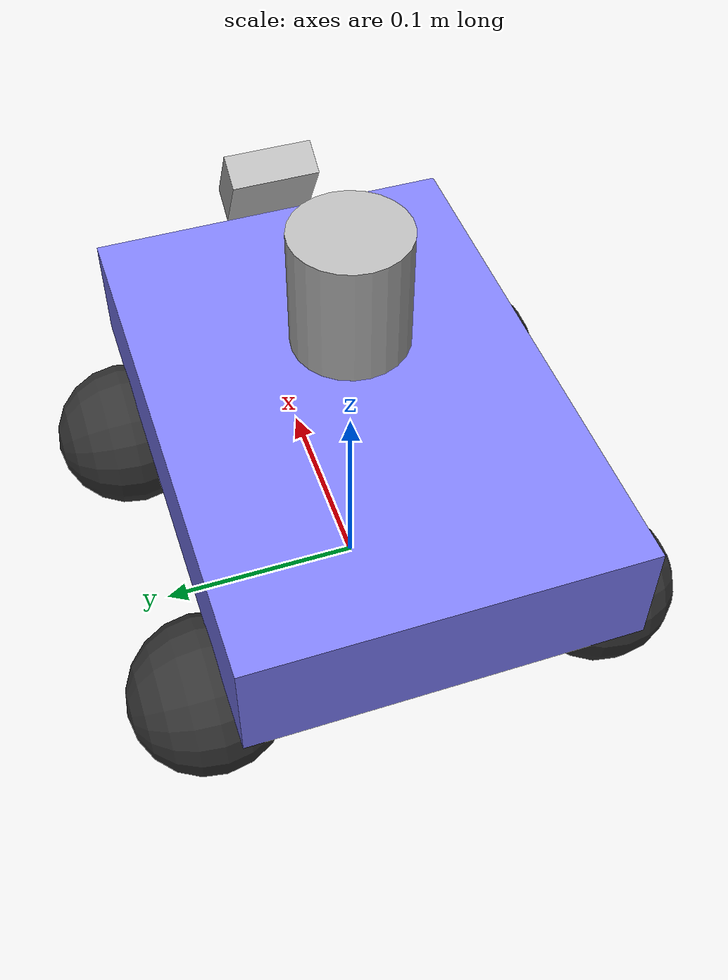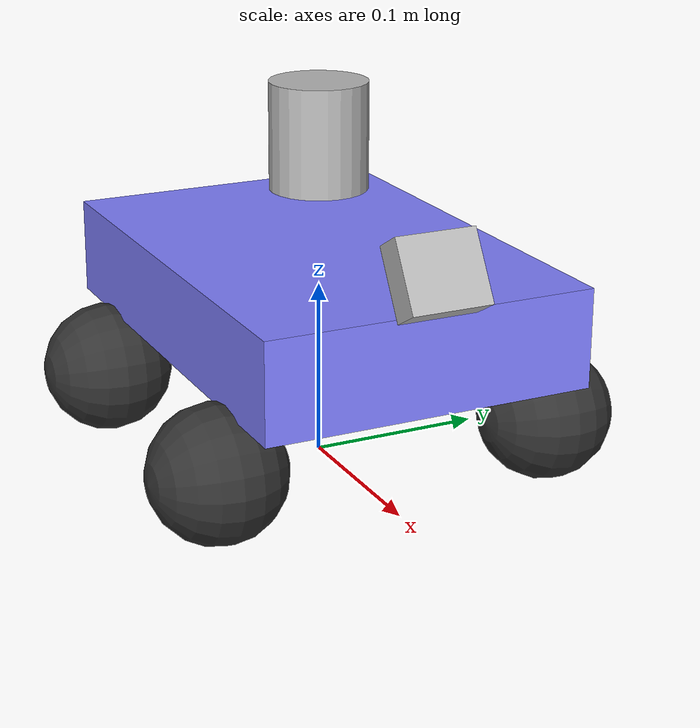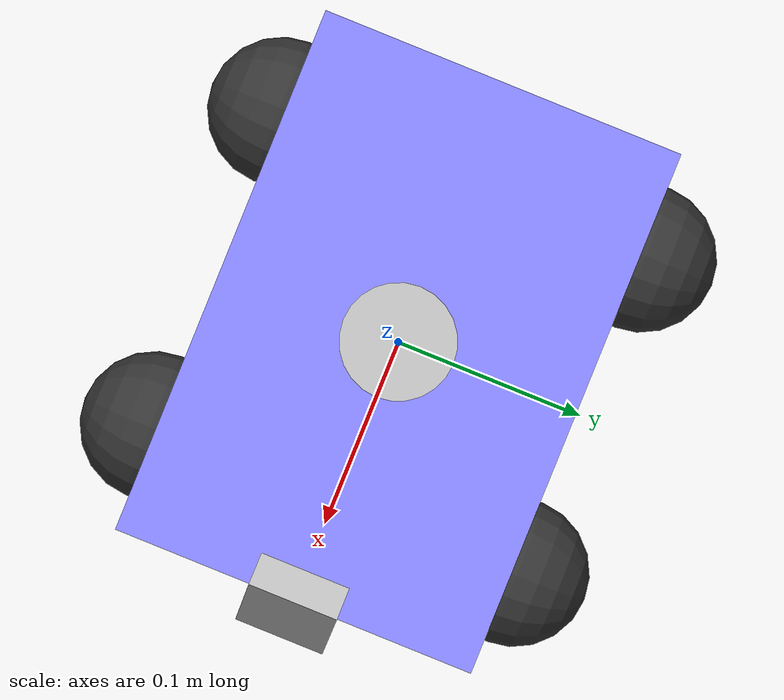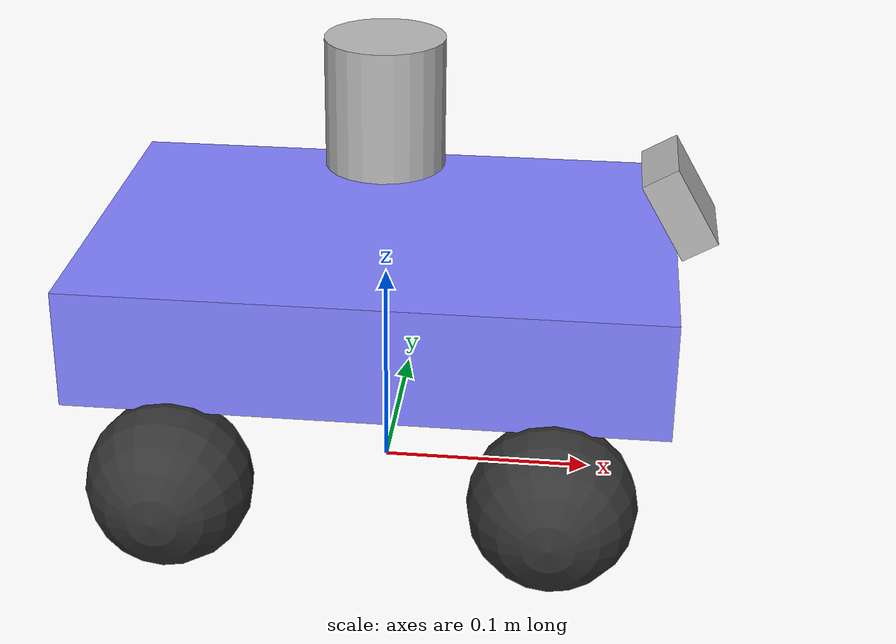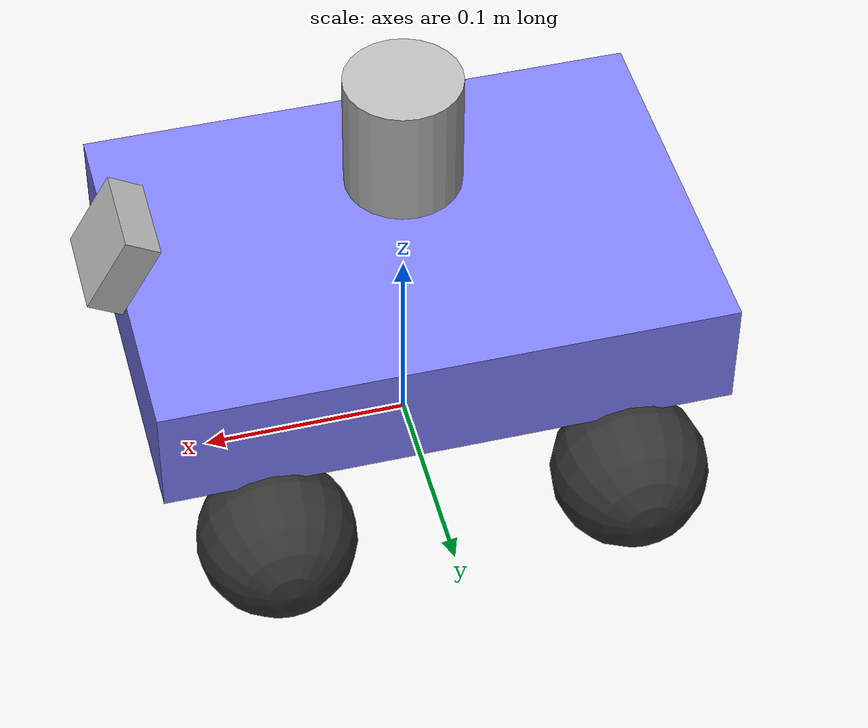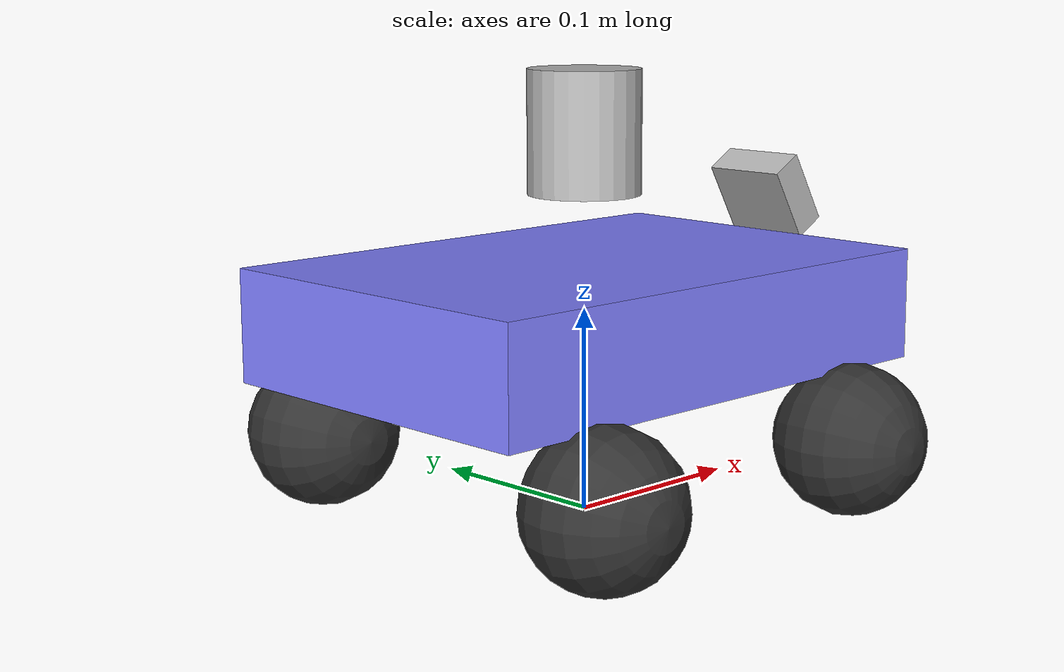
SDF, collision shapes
<?xml version="1.0"?>
<sdf version="1.8" xmlns:xacro="http://ros.org/wiki/xacro">
  <model name="wheeltec_mini_mec" xmlns:ignition="http://ignitionrobotics.org/schema"
    canonical_link='base_link'>

    <link name="base_footprint" />

    <link name="base_link">
      <pose>0 0 0.0975 0 0 0</pose>
      <inertial>
        <mass>1.26</mass>
        <inertia>
          <ixx>0.00391125</ixx>
          <ixy>0</ixy>
          <ixz>0</ixz>
          <iyy>0.007972125</iyy>
          <iyz>0</iyz>
          <izz>0.011248125</izz>
        </inertia>
      </inertial>
      <visual name='visual'>
        <pose>0.0120 0 -0.0505 0 0 0</pose>
        <geometry>
          <mesh>
            <uri>
              model://ros_gz_example_description/models/wheeltec_mini_mec/meshes/base_link.STL
            </uri>
          </mesh>
        </geometry>
        <material>
          <ambient>0.5 0.5 1.0 1</ambient>
          <diffuse>0.5 0.5 1.0 1</diffuse>
          <specular>0.0 0.0 1.0 1</specular>
        </material>
      </visual>
      <collision name='collision'>
        <geometry>
          <box>
            <size>0.27 0.185 0.055</size>
          </box>
        </geometry>
      </collision>
    </link>

    <link name="left_wheel_link">
      <pose>-0.085 0.0975 0.0375 -1.57 0 0</pose>
      <inertial>
        <mass>0.41</mass>
        <inertia>
          <ixx>0.000179127291666667</ixx>
          <ixy>0</ixy>
          <ixz>0</ixz>
          <iyy>0.000179127291666667</iyy>
          <iyz>0</iyz>
          <izz>0.00028828125</izz>
        </inertia>
      </inertial>
      <visual name='visual'>
        <pose>0 0 -0.01625 1.5707 0 0</pose>
        <geometry>
          <!-- scale mesh to radius == 0.0375 -->
          <mesh>
            <uri>
              model://ros_gz_example_description/models/wheeltec_mini_mec/meshes/left_rear_wheel_link.STL
            </uri>
          </mesh>
        </geometry>
        <material>
          <ambient>0.2 0.2 0.2 1</ambient>
          <diffuse>0.2 0.2 0.2 1</diffuse>
          <specular>0.2 0.2 0.2 1</specular>
        </material>
      </visual>
      <collision name='collision'>
        <geometry>
          <sphere>
            <radius>0.0375</radius>
          </sphere>
        </geometry>
        <surface>
          <friction>
            <ode>
              <mu>1.0</mu>
              <mu2>0.0</mu2>
              <fdir1 ignition:expressed_in="base_link">1 1 0</fdir1>
            </ode>
          </friction>
        </surface>
      </collision>
    </link>

    <link name="right_wheel_link">
      <pose>-0.085 -0.0975 0.0375 -1.57 0 0</pose>
      <inertial>
        <mass>0.41</mass>
        <inertia>
          <ixx>0.000179127291666667</ixx>
          <ixy>0</ixy>
          <ixz>0</ixz>
          <iyy>0.000179127291666667</iyy>
          <iyz>0</iyz>
          <izz>0.00028828125</izz>
        </inertia>
      </inertial>
      <visual name='visual'>
        <pose>0 0 0.01625 1.5707 0 0</pose>
        <geometry>
          <!-- scale mesh to radius == 0.0375 -->
          <mesh>
            <uri>
              model://ros_gz_example_description/models/wheeltec_mini_mec/meshes/right_rear_wheel_link.STL
            </uri>
          </mesh>
        </geometry>
        <material>
          <ambient>0.2 0.2 0.2 1</ambient>
          <diffuse>0.2 0.2 0.2 1</diffuse>
          <specular>0.2 0.2 0.2 1</specular>
        </material>
      </visual>
      <collision name='collision'>
        <geometry>
          <sphere>
            <radius>0.0375</radius>
          </sphere>
        </geometry>
        <surface>
          <friction>
            <ode>
              <mu>1.0</mu>
              <mu2>0.0</mu2>
              <fdir1 ignition:expressed_in="base_link">1 -1 0</fdir1>
            </ode>
          </friction>
        </surface>
      </collision>
    </link>

    <link name="left_front_link">
      <pose>0.085 0.0975 0.0375 -1.57 0 0</pose>
      <inertial>
        <mass>0.41</mass>
        <inertia>
          <ixx>0.000179127291666667</ixx>
          <ixy>0</ixy>
          <ixz>0</ixz>
          <iyy>0.000179127291666667</iyy>
          <iyz>0</iyz>
          <izz>0.00028828125</izz>
        </inertia>
      </inertial>
      <visual name='visual'>
        <pose>0 0 -0.01625 1.5707 0 0</pose>
        <geometry>
          <!-- scale mesh to radius == 0.0375 -->
          <mesh>
            <uri>
              model://ros_gz_example_description/models/wheeltec_mini_mec/meshes/left_front_wheel_link.STL
            </uri>
          </mesh>
        </geometry>
        <material>
          <ambient>0.2 0.2 0.2 1</ambient>
          <diffuse>0.2 0.2 0.2 1</diffuse>
          <specular>0.2 0.2 0.2 1</specular>
        </material>
      </visual>
      <collision name='collision'>
        <geometry>
          <sphere>
            <radius>0.0375</radius>
          </sphere>
        </geometry>
        <surface>
          <friction>
            <ode>
              <mu>1.0</mu>
              <mu2>0.0</mu2>
              <fdir1 ignition:expressed_in="base_link">1 -1 0</fdir1>
            </ode>
          </friction>
        </surface>
      </collision>
    </link>

    <link name="right_front_link">
      <pose>0.085 -0.0975 0.0375 -1.57 0 0</pose>
      <inertial>
        <mass>0.41</mass>
        <inertia>
          <ixx>0.000179127291666667</ixx>
          <ixy>0</ixy>
          <ixz>0</ixz>
          <iyy>0.000179127291666667</iyy>
          <iyz>0</iyz>
          <izz>0.00028828125</izz>
        </inertia>
      </inertial>
      <visual name='visual'>
        <pose>0 0 0.01625 1.5707 0 0</pose>
        <geometry>
          <!-- scale mesh to radius == 0.0375 -->
          <mesh>
            <uri>
              model://ros_gz_example_description/models/wheeltec_mini_mec/meshes/right_front_wheel_link.STL
            </uri>
          </mesh>
        </geometry>
        <material>
          <ambient>0.2 0.2 0.2 1</ambient>
          <diffuse>0.2 0.2 0.2 1</diffuse>
          <specular>0.2 0.2 0.2 1</specular>
        </material>
      </visual>
      <collision name='collision'>
        <geometry>
          <sphere>
            <radius>0.0375</radius>
          </sphere>
        </geometry>
        <surface>
          <friction>
            <ode>
              <mu>1.0</mu>
              <mu2>0.0</mu2>
              <fdir1 ignition:expressed_in="base_link">1 1 0</fdir1>
            </ode>
          </friction>
        </surface>
      </collision>
    </link>

    <link name="camera_rgb_frame">
      <pose relative_to="camera_link">0 0 0 -1.570795 0 -1.570795</pose>
    </link>

    <link name="camera_link">
      <pose>0.135 0 0.145 0 -0.523599 0</pose>
      <inertial>
        <mass>0.1</mass>
        <inertia>
          <ixx>0.000166667</ixx>
          <iyy>0.000166667</iyy>
          <izz>0.000166667</izz>
        </inertia>
      </inertial>
      <collision name="collision">
        <geometry>
          <box>
            <size>0.018 0.045 0.04</size>
          </box>
        </geometry>
      </collision>
      <visual name="visual">
        <geometry>
          <box>
            <size>0.018 0.045 0.04</size>
          </box>
        </geometry>
      </visual>
      <sensor name="camera" type="camera">
        <always_on>true</always_on>
        <visualize>true</visualize>
        <update_rate>30</update_rate>
        <topic>camera/image_raw</topic>
        <gz_frame_id>camera_rgb_frame</gz_frame_id>
        <camera>
          <camera_info_topic>camera/camera_info</camera_info_topic>
          <horizontal_fov>1.02974</horizontal_fov>
          <image>
            <width>1920</width>
            <height>1080</height>
            <format>R8G8B8</format>
          </image>
          <clip>
            <near>0.02</near>
            <far>300</far>
          </clip>
          <noise>
            <type>gaussian</type>
            <mean>0.0</mean>
            <stddev>0.007</stddev>
          </noise>
        </camera>
      </sensor>
    </link>

    <link name="base_scan">
      <pose>0 0 0.186 0 0 0</pose>
      <inertial>
        <mass>0.1</mass>
        <inertia>
          <ixx>0.000166667</ixx>
          <iyy>0.000166667</iyy>
          <izz>0.000166667</izz>
        </inertia>
      </inertial>
      <collision name="collision">
        <geometry>
          <cylinder>
            <radius>0.0275</radius>
            <length>0.06</length>
          </cylinder>
        </geometry>
      </collision>
      <visual name="visual">
        <geometry>
          <cylinder>
            <radius>0.0275</radius>
            <length>0.06</length>
          </cylinder>
        </geometry>
      </visual>
      <sensor name="lslidar_n10p" type="gpu_lidar">
        <always_on>true</always_on>
        <visualize>true</visualize>
        <update_rate>10</update_rate>
        <topic>scan</topic>
        <gz_frame_id>base_scan</gz_frame_id>
        <lidar>
          <scan>
            <horizontal>
              <samples>360</samples>
              <resolution>1.000000</resolution>
              <min_angle>0.000000</min_angle>
              <max_angle>6.2832</max_angle>
            </horizontal>
          </scan>
          <range>
            <min>0.08</min>
            <max>10.0</max>
            <resolution>0.01</resolution>
          </range>
          <noise>
            <type>gaussian</type>
            <mean>0.0</mean>
            <stddev>0.01</stddev>
          </noise>
        </lidar>
      </sensor>
    </link>

    <link name="imu_link">
      <pose relative_to="base_link">0 0 0 0 0 0</pose>
      <sensor name="imu_sensor" type="imu">
        <always_on>1</always_on>
        <update_rate>50</update_rate>
        <visualize>true</visualize>
        <topic>imu</topic>
      </sensor>
    </link>

    <!-- joint relationship -->
    <joint name="base_joint" type="fixed">
      <parent>base_link</parent>
      <child>base_footprint</child>
    </joint>

    <joint name="left_wheel_joint" type="revolute">
      <parent>base_link</parent>
      <child>left_wheel_link</child>
      <axis>
        <xyz>0 0 1</xyz>
        <limit>
          <lower>-1.79769e+308</lower>
          <upper>1.79769e+308</upper>
        </limit>
      </axis>
    </joint>

    <joint name="right_wheel_joint" type="revolute">
      <parent>base_link</parent>
      <child>right_wheel_link</child>
      <axis>
        <xyz>0 0 1</xyz>
        <limit>
          <lower>-1.79769e+308</lower>
          <upper>1.79769e+308</upper>
        </limit>
      </axis>
    </joint>

    <joint name="left_front_joint" type="revolute">
      <parent>base_link</parent>
      <child>left_front_link</child>
      <axis>
        <xyz>0 0 1</xyz>
        <limit>
          <lower>-1.79769e+308</lower>
          <upper>1.79769e+308</upper>
        </limit>
      </axis>
    </joint>

    <joint name="right_front_joint" type="revolute">
      <parent>base_link</parent>
      <child>right_front_link</child>
      <axis>
        <xyz>0 0 1</xyz>
        <limit>
          <lower>-1.79769e+308</lower>
          <upper>1.79769e+308</upper>
        </limit>
      </axis>
    </joint>

    <joint name="camera_joint" type="fixed">
      <parent>base_link</parent>
      <child>camera_link</child>
    </joint>

    <joint name="camera_rgb_joint" type="fixed">
      <parent>camera_link</parent>
      <child>camera_rgb_frame</child>
    </joint>

    <joint name="lidar_joint" type="fixed">
      <parent>base_link</parent>
      <child>base_scan</child>
    </joint>

    <joint name="imu_joint" type="fixed">
      <parent>base_link</parent>
      <child>imu_link</child>
    </joint>

    <plugin
      filename="ignition-gazebo-mecanum-drive-system"
      name="ignition::gazebo::systems::MecanumDrive">
      <front_left_joint>left_front_joint</front_left_joint>
      <front_right_joint>right_front_joint</front_right_joint>
      <back_left_joint>left_wheel_joint</back_left_joint>
      <back_right_joint>right_wheel_joint</back_right_joint>
      <wheel_separation>0.195</wheel_separation>
      <wheelbase>0.17</wheelbase>
      <wheel_radius>0.0375</wheel_radius>
      <min_acceleration>-1</min_acceleration>
      <max_acceleration>1</max_acceleration>
    </plugin>

    <plugin
      filename="ignition-gazebo-joint-state-publisher-system"
      name="ignition::gazebo::systems::JointStatePublisher">
      <topic>joint_states</topic>
    </plugin>

  </model>
</sdf>
